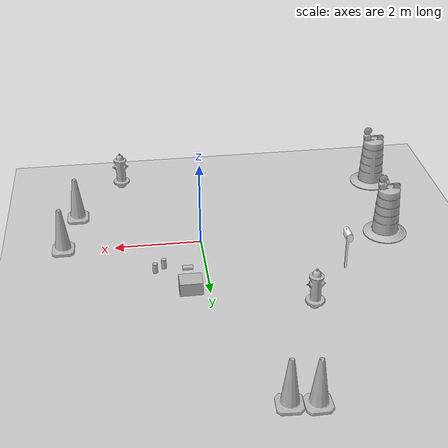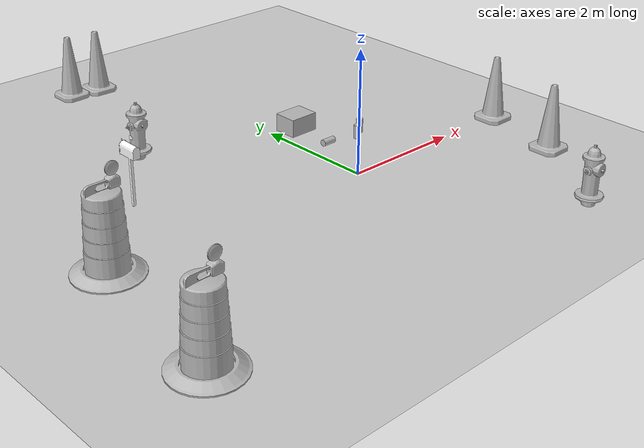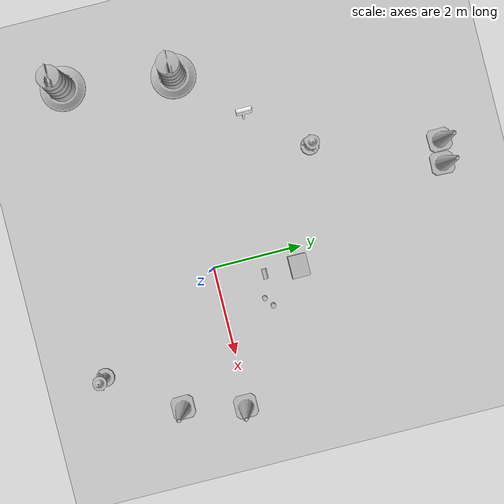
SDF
<sdf version="1.7">
 <world name="default">
  <light name="sun" type="directional">
   <pose>0 0 10 0 -0 0</pose>
   <diffuse>0.8 0.8 0.8 1</diffuse>
   <specular>0.2 0.2 0.2 1</specular>
   <attenuation>
    <range>1000</range>
    <constant>0.9</constant>
    <linear>0.01</linear>
    <quadratic>0.001</quadratic>
   </attenuation>
   <direction>-0.5 0.1 -0.9</direction>
   <spot><inner_angle>0</inner_angle><outer_angle>0</outer_angle><falloff>0</falloff></spot>
  </light>
  <model name="ground_plane">
   <static>1</static>
   <link name="link">
    <collision name="collision">
     <geometry><plane><normal>0 0 1</normal><size>100 100</size></plane></geometry>
     <surface>
      <contact><collide_bitmask>65535</collide_bitmask></contact>
      <friction><ode><mu>100</mu><mu2>50</mu2></ode></friction>
     </surface>
    </collision>
    <visual name="visual">
     <cast_shadows>0</cast_shadows>
     <geometry><plane><normal>0 0 1</normal><size>100 100</size></plane></geometry>
     <material>
      <script><uri>file://media/materials/scripts/gazebo.material</uri><name>Gazebo/Grey</name></script>
     </material>
    </visual>
   </link>
  </model>
  <gravity>0 0 -9.8</gravity>
  <magnetic_field>6e-06 2.3e-05 -4.2e-05</magnetic_field>
  <atmosphere type="adiabatic"/>
  <physics type="ode">
   <max_step_size>0.001</max_step_size>
   <real_time_factor>1</real_time_factor>
   <real_time_update_rate>1000</real_time_update_rate>
  </physics>
  <scene><ambient>0.4 0.4 0.4 1</ambient><background>0.7 0.7 0.7 1</background><shadows>1</shadows></scene>
  <spherical_coordinates>
   <surface_model>EARTH_WGS84</surface_model>
   <latitude_deg>0</latitude_deg>
   <longitude_deg>0</longitude_deg>
   <elevation>0</elevation>
   <heading_deg>0</heading_deg>
  </spherical_coordinates>
  <model name="beer">
   <link name="link">
    <pose>0 0 0.115 0 -0 0</pose>
    <inertial>
     <mass>0.39</mass>
     <inertia><ixx>0.00058</ixx><ixy>0</ixy><ixz>0</ixz><iyy>0.00058</iyy><iyz>0</iyz><izz>0.00019</izz></inertia>
    </inertial>
    <collision name="collision">
     <geometry><cylinder><radius>0.055</radius><length>0.23</length></cylinder></geometry>
    </collision>
    <visual name="visual">
     <geometry><cylinder><radius>0.055</radius><length>0.23</length></cylinder></geometry>
     <material>
      <script>
       <uri>model://beer/materials/scripts</uri>
       <uri>model://beer/materials/textures</uri>
       <name>Beer/Diffuse</name>
      </script>
     </material>
    </visual>
   </link>
   <pose>0.924665 0.93884 -2e-06 0 -0 -2e-05</pose>
  </model>
  <model name="beer_0">
   <link name="link">
    <pose>0 0 0.115 0 -0 0</pose>
    <inertial>
     <mass>0.39</mass>
     <inertia><ixx>0.00058</ixx><ixy>0</ixy><ixz>0</ixz><iyy>0.00058</iyy><iyz>0</iyz><izz>0.00019</izz></inertia>
    </inertial>
    <collision name="collision">
     <geometry><cylinder><radius>0.055</radius><length>0.23</length></cylinder></geometry>
    </collision>
    <visual name="visual">
     <geometry><cylinder><radius>0.055</radius><length>0.23</length></cylinder></geometry>
     <material>
      <script>
       <uri>model://beer/materials/scripts</uri>
       <uri>model://beer/materials/textures</uri>
       <name>Beer/Diffuse</name>
      </script>
     </material>
    </visual>
   </link>
   <pose>1.12502 1.08251 -7e-06 0 0 -1.9e-05</pose>
  </model>
  <model name="cardboard_box">
   <pose>0.408799 1.83843 0.149 0 -0 0</pose>
   <link name="link">
    <inertial>
     <mass>2</mass>
     <inertia>
      <ixx>0.0416667</ixx>
      <ixy>0</ixy>
      <ixz>0</ixz>
      <iyy>0.0566667</iyy>
      <iyz>0</iyz>
      <izz>0.0683333</izz>
     </inertia>
    </inertial>
    <collision name="collision">
     <geometry><box><size>0.5 0.4 0.3</size></box></geometry>
     <surface>
      <friction><ode><mu>1</mu><mu2>1</mu2></ode></friction>
      <contact><ode><kp>1e+07</kp><kd>1</kd><min_depth>0.001</min_depth><max_vel>0.1</max_vel></ode></contact>
     </surface>
    </collision>
    <visual name="visual">
     <pose>0 0 -0.15 0 -0 0</pose>
     <geometry>
      <mesh><uri>model://cardboard_box/meshes/cardboard_box.dae</uri><scale>1.25932 1.00745 0.755591</scale></mesh>
     </geometry>
    </visual>
   </link>
  </model>
  <model name="Construction Barrel">
   <link name="link">
    <inertial>
     <pose>0 0 0.4 0 -0 0</pose>
     <mass>500</mass>
     <inertia><ixx>51.2096</ixx><iyy>51.2096</iyy><izz>25</izz><ixy>0</ixy><ixz>0</ixz><iyz>0</iyz></inertia>
    </inertial>
    <collision name="collision">
     <geometry><mesh><uri>model://construction_barrel/meshes/construction_barrel.dae</uri></mesh></geometry>
    </collision>
    <visual name="visual">
     <geometry><mesh><uri>model://construction_barrel/meshes/construction_barrel.dae</uri></mesh></geometry>
    </visual>
   </link>
   <pose>-4.35934 0.171797 -0 0 0 -2.7e-05</pose>
  </model>
  <model name="Construction Cone">
   <link name="link">
    <collision name="collision">
     <geometry>
      <mesh><scale>10 10 10</scale><uri>model://construction_cone/meshes/construction_cone.dae</uri></mesh>
     </geometry>
    </collision>
    <visual name="visual">
     <geometry>
      <mesh><scale>10 10 10</scale><uri>model://construction_cone/meshes/construction_cone.dae</uri></mesh>
     </geometry>
    </visual>
    <inertial>
     <inertia><ixx>1</ixx><ixy>0</ixy><ixz>0</ixz><iyy>1</iyy><iyz>0</iyz><izz>1</izz></inertia>
     <mass>1</mass>
    </inertial>
   </link>
   <pose>2.85004 -1.41573 -0 -0 -0 -0</pose>
  </model>
  <model name="Construction Cone_0">
   <link name="link">
    <collision name="collision">
     <geometry>
      <mesh><scale>10 10 10</scale><uri>model://construction_cone/meshes/construction_cone.dae</uri></mesh>
     </geometry>
    </collision>
    <visual name="visual">
     <geometry>
      <mesh><scale>10 10 10</scale><uri>model://construction_cone/meshes/construction_cone.dae</uri></mesh>
     </geometry>
    </visual>
    <inertial>
     <inertia><ixx>1</ixx><ixy>0</ixy><ixz>0</ixz><iyy>1</iyy><iyz>0</iyz><izz>1</izz></inertia>
     <mass>1</mass>
    </inertial>
   </link>
   <pose>3.16194 -0.055284 0 -0 -0 -0</pose>
  </model>
  <model name="fire_hydrant">
   <static>1</static>
   <link name="link">
    <collision name="collision">
     <geometry><mesh><uri>model://fire_hydrant/meshes/fire_hydrant.dae</uri></mesh></geometry>
    </collision>
    <visual name="visual">
     <geometry><mesh><uri>model://fire_hydrant/meshes/fire_hydrant.dae</uri></mesh></geometry>
    </visual>
   </link>
   <pose>-2.09845 2.72395 0 0 -0 0</pose>
  </model>
  <model name="fire_hydrant_0">
   <static>1</static>
   <link name="link">
    <collision name="collision">
     <geometry><mesh><uri>model://fire_hydrant/meshes/fire_hydrant.dae</uri></mesh></geometry>
    </collision>
    <visual name="visual">
     <geometry><mesh><uri>model://fire_hydrant/meshes/fire_hydrant.dae</uri></mesh></geometry>
    </visual>
   </link>
   <pose>1.76258 -2.90298 0 0 -0 0</pose>
  </model>
  <model name="Mailbox">
   <link name="link">
    <collision name="collision">
     <geometry><mesh><uri>model://mailbox/meshes/mailbox.dae</uri></mesh></geometry>
    </collision>
    <visual name="visual">
     <geometry><mesh><uri>model://mailbox/meshes/mailbox.dae</uri></mesh></geometry>
     <material>
      <script>
       <uri>model://mailbox/materials/scripts</uri>
       <uri>model://mailbox/materials/textures</uri>
       <name>Mailbox/Diffuse</name>
      </script>
     </material>
    </visual>
    <inertial>
     <inertia><ixx>1</ixx><ixy>0</ixy><ixz>0</ixz><iyy>1</iyy><iyz>0</iyz><izz>1</izz></inertia>
     <mass>1</mass>
    </inertial>
   </link>
   <pose>-3.07123 1.45979 -9e-06 -1e-06 -8e-06 0</pose>
  </model>
  <model name="beer_1">
   <link name="link">
    <pose>0 0 0.115 0 -0 0</pose>
    <inertial>
     <mass>0.39</mass>
     <inertia><ixx>0.00058</ixx><ixy>0</ixy><ixz>0</ixz><iyy>0.00058</iyy><iyz>0</iyz><izz>0.00019</izz></inertia>
    </inertial>
    <collision name="collision">
     <geometry><cylinder><radius>0.055</radius><length>0.23</length></cylinder></geometry>
    </collision>
    <visual name="visual">
     <geometry><cylinder><radius>0.055</radius><length>0.23</length></cylinder></geometry>
     <material>
      <script>
       <uri>model://beer/materials/scripts</uri>
       <uri>model://beer/materials/textures</uri>
       <name>Beer/Diffuse</name>
      </script>
     </material>
    </visual>
   </link>
   <pose>0.292979 1.07206 0.055 -3.14105 1.57044 -3.14105</pose>
  </model>
  <model name="Construction Cone_1">
   <link name="link">
    <collision name="collision">
     <geometry>
      <mesh><scale>10 10 10</scale><uri>model://construction_cone/meshes/construction_cone.dae</uri></mesh>
     </geometry>
    </collision>
    <visual name="visual">
     <geometry>
      <mesh><scale>10 10 10</scale><uri>model://construction_cone/meshes/construction_cone.dae</uri></mesh>
     </geometry>
    </visual>
    <inertial>
     <inertia><ixx>1</ixx><ixy>0</ixy><ixz>0</ixz><iyy>1</iyy><iyz>0</iyz><izz>1</izz></inertia>
     <mass>1</mass>
    </inertial>
   </link>
   <pose>-1.53225 5.5656 -0 0 -1e-06 0.026937</pose>
  </model>
  <model name="Construction Cone_2">
   <link name="link">
    <collision name="collision">
     <geometry>
      <mesh><scale>10 10 10</scale><uri>model://construction_cone/meshes/construction_cone.dae</uri></mesh>
     </geometry>
    </collision>
    <visual name="visual">
     <geometry>
      <mesh><scale>10 10 10</scale><uri>model://construction_cone/meshes/construction_cone.dae</uri></mesh>
     </geometry>
    </visual>
    <inertial>
     <inertia><ixx>1</ixx><ixy>0</ixy><ixz>0</ixz><iyy>1</iyy><iyz>0</iyz><izz>1</izz></inertia>
     <mass>1</mass>
    </inertial>
   </link>
   <pose>-1.01505 5.50138 -0 0 -1e-06 -0.045723</pose>
  </model>
  <model name="Construction Barrel_0">
   <link name="link">
    <inertial>
     <pose>0 0 0.4 0 -0 0</pose>
     <mass>500</mass>
     <inertia><ixx>51.2096</ixx><iyy>51.2096</iyy><izz>25</izz><ixy>0</ixy><ixz>0</ixz><iyz>0</iyz></inertia>
    </inertial>
    <collision name="collision">
     <geometry><mesh><uri>model://construction_barrel/meshes/construction_barrel.dae</uri></mesh></geometry>
    </collision>
    <visual name="visual">
     <geometry><mesh><uri>model://construction_barrel/meshes/construction_barrel.dae</uri></mesh></geometry>
    </visual>
   </link>
   <pose>-4.68868 -2.28694 -0 0 0 -4e-06</pose>
  </model>
 </world>
</sdf>
